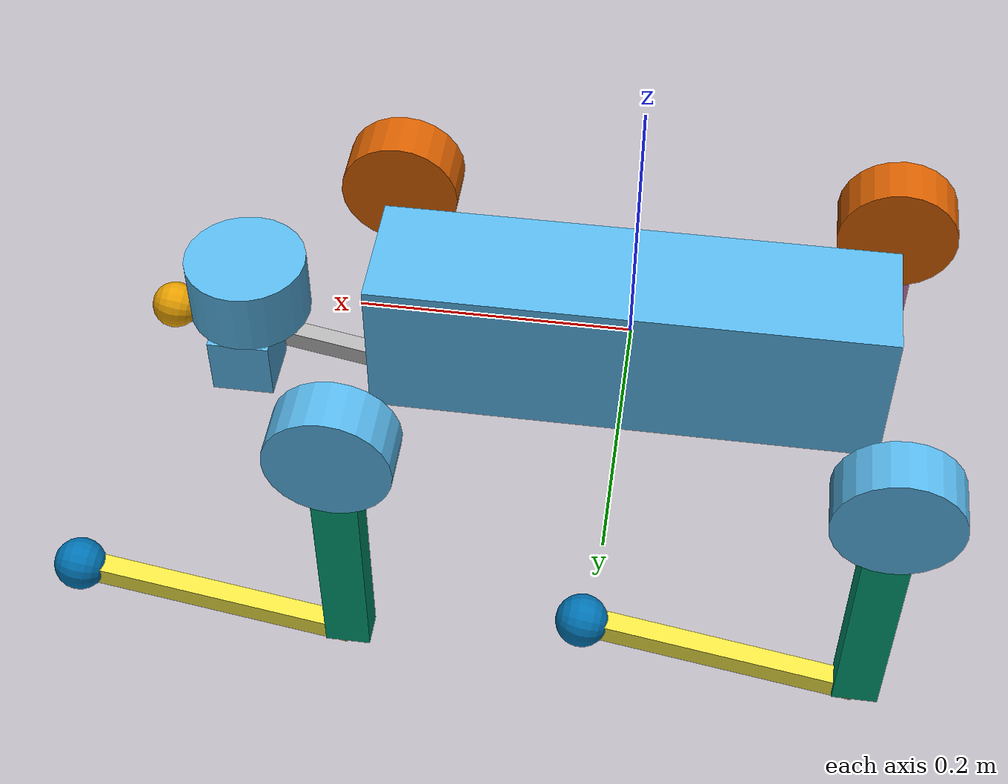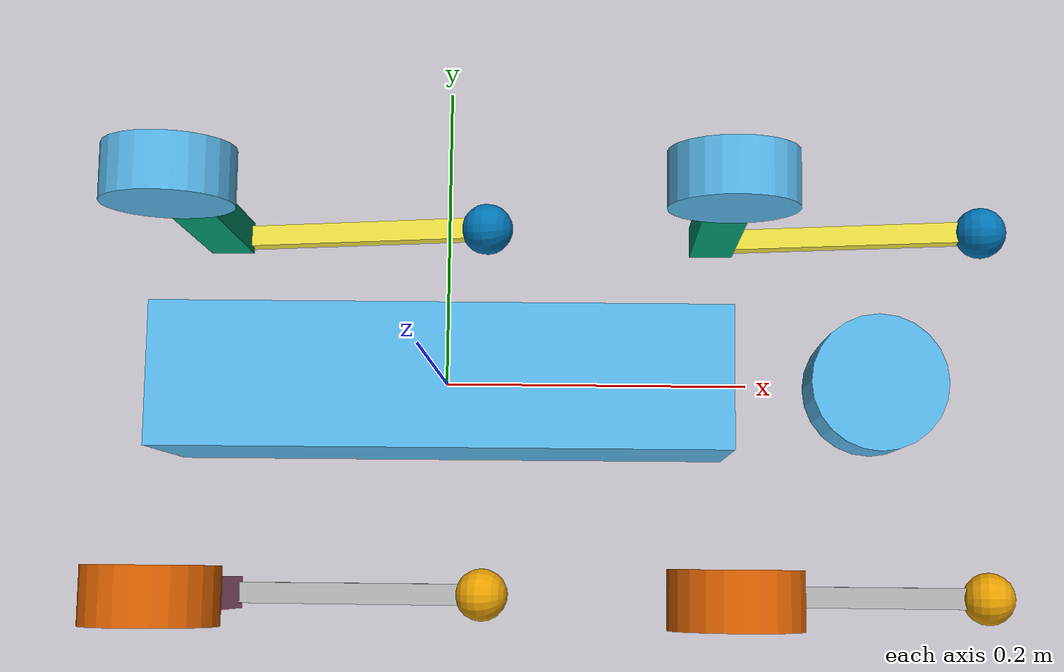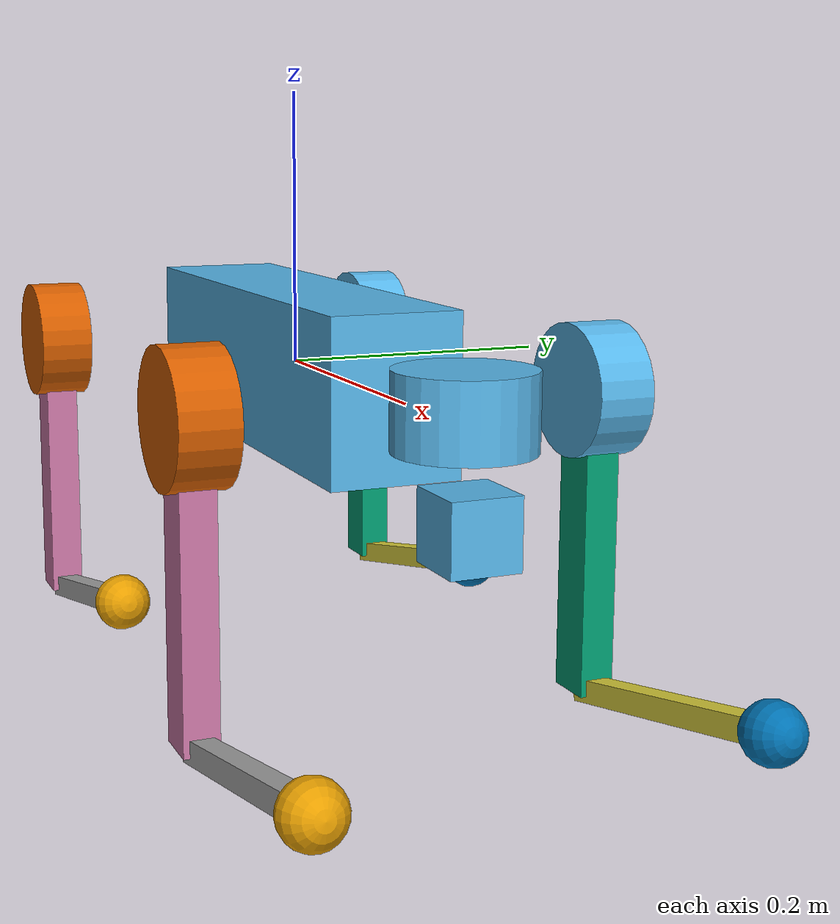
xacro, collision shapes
<?xml version="1.0"?>

<robot name="go2" xmlns:xacro="http://www.ros.org/wiki/xacro">

  <xacro:arg name="DEBUG" default="false"/>
  <xacro:arg name="GAZEBO" default="false"/>
  <xacro:arg name="CLASSIC" default="false"/>

  <xacro:include filename="$(find go2_description)/xacro/const.xacro"/>
  <xacro:include filename="$(find go2_description)/xacro/materials.xacro"/>
  <xacro:include filename="$(find go2_description)/xacro/leg.xacro"/>

  <xacro:if value="$(arg GAZEBO)">
    <xacro:if value="$(arg CLASSIC)">
      <xacro:include filename="$(find go2_description)/xacro/gazebo_classic.xacro"/>
    </xacro:if>
    <xacro:unless value="$(arg CLASSIC)">
      <xacro:include filename="$(find go2_description)/xacro/gazebo.xacro"/>
    </xacro:unless>
  </xacro:if>
  <xacro:unless value="$(arg GAZEBO)">
    <xacro:include filename="$(find go2_description)/xacro/ros2_control.xacro"/>
  </xacro:unless>

  <!-- Rotor related joint and link is only for demonstrate location. -->
  <!-- Actually, the rotor will rotate and the joint is not fixed. Reduction ratio should be considered. -->

  <!-- Debug mode will hung up the robot, use "true" or "false" to switch it. -->
  <xacro:if value="$(arg DEBUG)">
    <link name="world"/>
    <joint name="base_static_joint" type="fixed">
      <origin rpy="0 0 0" xyz="0 0 0"/>
      <parent link="world"/>
      <child link="base"/>
    </joint>
  </xacro:if>

  <link name="base">
    <visual>
      <origin rpy="0 0 0" xyz="0 0 0"/>
      <geometry>
        <box size="0.001 0.001 0.001"/>
      </geometry>
    </visual>
  </link>

  <joint name="floating_base" type="fixed">
    <origin rpy="0 0 0" xyz="0 0 0"/>
    <parent link="base"/>
    <child link="trunk"/>
  </joint>

  <link name="trunk">
    <visual>
      <origin rpy="0 0 0" xyz="0 0 0"/>
      <geometry>
        <mesh filename="file://$(find go2_description)/meshes/trunk.dae" scale="1 1 1"/>
      </geometry>
    </visual>
    <collision>
      <origin rpy="0 0 0" xyz="0 0 0"/>
      <geometry>
        <box size="${trunk_length} ${trunk_width} ${trunk_height}"/>
      </geometry>
    </collision>
    <collision>
      <origin rpy="0 0 0" xyz="0 0 0"/>
      <geometry>
        <box size="0.1881 0.04675 0.057"/>
      </geometry>
    </collision>
    <collision>
      <origin rpy="0 0 0" xyz="0.285 0 0.01"/>
      <geometry>
        <cylinder length="0.05" radius="0.045"/>
      </geometry>
    </collision>
    <collision>
      <origin rpy="0 0 0" xyz="0.293 0 -0.06"/>
      <geometry>
        <box size="0.047 0.047 0.047"/>
      </geometry>
    </collision>
    <inertial>
      <origin rpy="0 0 0" xyz="${trunk_com_x} ${trunk_com_y} ${trunk_com_z}"/>
      <mass value="${trunk_mass}"/>
      <inertia
          ixx="${trunk_ixx}" ixy="${trunk_ixy}" ixz="${trunk_ixz}"
          iyy="${trunk_iyy}" iyz="${trunk_iyz}"
          izz="${trunk_izz}"/>
    </inertial>
  </link>

  <joint name="imu_joint" type="fixed">
    <parent link="trunk"/>
    <child link="imu_link"/>
    <origin rpy="0 0 0" xyz="0 0 0"/>
  </joint>

  <link name="imu_link">
    <inertial>
      <mass value="0.001"/>
      <origin rpy="0 0 0" xyz="0 0 0"/>
      <inertia ixx="0.0001" ixy="0" ixz="0" iyy="0.0001" iyz="0" izz="0.0001"/>
    </inertial>
    <visual>
      <origin rpy="0 0 0" xyz="0 0 0"/>
      <geometry>
        <box size="0.001 0.001 0.001"/>
      </geometry>
    </visual>
    <collision>
      <origin rpy="0 0 0" xyz="0 0 0"/>
      <geometry>
        <box size=".001 .001 .001"/>
      </geometry>
    </collision>
  </link>

  <joint name="camera_joint_front" type="fixed">
    <parent link="trunk"/>
    <child link="front_camera"/>
    <origin rpy="0 0 0" xyz="0.32715 0 0.04297"/>
  </joint>

  <link name="front_camera">
  </link>

  <joint name="lidar_joint" type="fixed">
    <origin
        xyz="0.28945 0 -0.046825" rpy="0 2.8782 0"/>
    <parent link="trunk"/>
    <child link="lidar"/>
    <axis xyz="0 0 0"/>
  </joint>

  <link name="lidar">
  </link>

  <xacro:leg name="FR" mirror="-1" mirror_dae="False" front_hind="1" front_hind_dae="True"/>
  <xacro:leg name="FL" mirror="1" mirror_dae="True" front_hind="1" front_hind_dae="True"/>
  <xacro:leg name="RR" mirror="-1" mirror_dae="False" front_hind="-1" front_hind_dae="False"/>
  <xacro:leg name="RL" mirror="1" mirror_dae="True" front_hind="-1" front_hind_dae="False"/>
</robot>

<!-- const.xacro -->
<robot xmlns:xacro="http://www.ros.org/wiki/xacro">

	<!-- Constants for robot dimensions -->
	<xacro:property name="PI" value="3.1415926535897931"/>
	<xacro:property name="stick_mass" value="0.00001"/>

	<!-- simplified collision value -->
	<xacro:property name="trunk_width" value="0.0935"/>
	<xacro:property name="trunk_length" value="0.3762"/>
	<xacro:property name="trunk_height" value="0.114"/>
	<xacro:property name="hip_radius" value="0.046"/>
	<xacro:property name="hip_length" value="0.04"/>
	<xacro:property name="thigh_shoulder_radius" value="0.041"/>
	<xacro:property name="thigh_shoulder_length" value="0.032"/>
	<xacro:property name="thigh_width" value="0.0245"/>
	<xacro:property name="thigh_height" value="0.034"/>
	<xacro:property name="calf_width" value="0.016"/>
	<xacro:property name="calf_height" value="0.016"/>
	<xacro:property name="foot_radius" value="0.02"/>
	<xacro:property name="stick_radius" value="0.01"/>
	<xacro:property name="stick_length" value="0.2"/>

	<!-- kinematic value -->
	<xacro:property name="thigh_offset" value="0.0955"/>
	<xacro:property name="thigh_length" value="0.213"/>
	<xacro:property name="calf_length" value="0.213"/>

	<!-- leg offset from trunk center value -->
	<xacro:property name="leg_offset_x" value="0.1934"/>
	<xacro:property name="leg_offset_y" value="0.0465"/>
	<xacro:property name="hip_offset" value="0.0955"/>

	<!-- offset of link locations (left front) -->
	<xacro:property name="hip_offset_x" value="0.1934"/>
	<xacro:property name="hip_offset_y" value="0.0465"/>
	<xacro:property name="hip_offset_z" value="0.0"/>

	<xacro:property name="thigh_offset_x" value="0"/>
	<xacro:property name="thigh_offset_y" value="0.0955"/>
	<xacro:property name="thigh_offset_z" value="0.0"/>

	<xacro:property name="calf_offset_x" value="0.0"/>
	<xacro:property name="calf_offset_y" value="0.0"/>
	<xacro:property name="calf_offset_z" value="-0.213"/>

	<!-- joint limits -->
	<xacro:property name="damping" value="0.1"/>
	<xacro:property name="friction" value="0.2"/>
	<xacro:property name="hip_position_max" value="1.0472"/>
	<xacro:property name="hip_position_min" value="-1.0472"/>
	<xacro:property name="hip_velocity_max" value="30.1"/>
	<xacro:property name="hip_torque_max" value="23.7"/>
	<xacro:property name="thigh_position_max" value="3.4907"/>
	<xacro:property name="thigh_position_min" value="-1.5708"/>
	<xacro:property name="thigh_velocity_max" value="30.1"/>
	<xacro:property name="thigh_torque_max" value="23.7"/>
	<xacro:property name="calf_position_max" value="-0.83776"/>
	<xacro:property name="calf_position_min" value="-2.7227"/>
	<xacro:property name="calf_velocity_max" value="20.06"/>
	<xacro:property name="calf_torque_max" value="35.55"/>

	<!-- dynamics inertial value -->
	<!-- trunk -->
	<xacro:property name="trunk_mass" value="6.921"/>
	<xacro:property name="trunk_com_x" value="0.021112"/>
	<xacro:property name="trunk_com_y" value="0.00"/>
	<xacro:property name="trunk_com_z" value="-0.005366"/>
	<xacro:property name="trunk_ixx" value="0.02448"/>
	<xacro:property name="trunk_ixy" value="0.00012166"/>
	<xacro:property name="trunk_ixz" value="0.0014849"/>
	<xacro:property name="trunk_iyy" value="0.098077"/>
	<xacro:property name="trunk_iyz" value="-3.12E-05"/>
	<xacro:property name="trunk_izz" value="0.107"/>

	<!-- hip (left front) -->
	<xacro:property name="hip_mass" value="0.678"/>
	<xacro:property name="hip_com_x" value="-0.0054"/>
	<xacro:property name="hip_com_y" value="0.00194"/>
	<xacro:property name="hip_com_z" value="-0.000105"/>
	<xacro:property name="hip_ixx" value="0.00048"/>
	<xacro:property name="hip_ixy" value="-3.01E-06"/>
	<xacro:property name="hip_ixz" value="1.11E-06"/>
	<xacro:property name="hip_iyy" value="0.000884"/>
	<xacro:property name="hip_iyz" value="-1.42E-06"/>
	<xacro:property name="hip_izz" value="0.000596"/>

	<!-- thigh -->
	<xacro:property name="thigh_mass" value="1.152"/>
	<xacro:property name="thigh_com_x" value="-0.00374"/>
	<xacro:property name="thigh_com_y" value="-0.0223"/>
	<xacro:property name="thigh_com_z" value="-0.0327"/>
	<xacro:property name="thigh_ixx" value="0.00584"/>
	<xacro:property name="thigh_ixy" value="8.72E-05"/>
	<xacro:property name="thigh_ixz" value="-0.000289"/>
	<xacro:property name="thigh_iyy" value="0.0058"/>
	<xacro:property name="thigh_iyz" value="0.000808"/>
	<xacro:property name="thigh_izz" value="0.00103"/>

	<!-- calf -->
	<xacro:property name="calf_mass" value="0.154"/>
	<xacro:property name="calf_com_x" value="0.00548"/>
	<xacro:property name="calf_com_y" value="-0.000975"/>
	<xacro:property name="calf_com_z" value="-0.115"/>
	<xacro:property name="calf_ixx" value="0.00108"/>
	<xacro:property name="calf_ixy" value="3.4E-07"/>
	<xacro:property name="calf_ixz" value="1.72E-05"/>
	<xacro:property name="calf_iyy" value="0.0011"/>
	<xacro:property name="calf_iyz" value="8.28E-06"/>
	<xacro:property name="calf_izz" value="3.29E-05"/>

	<!-- foot -->
	<xacro:property name="foot_mass" value="0.06"/>

</robot>

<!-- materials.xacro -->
<robot>

	<material name="black">
		<color rgba="0.0 0.0 0.0 1.0"/>
	</material>

	<material name="blue">
		<color rgba="0.0 0.0 0.8 1.0"/>
	</material>

	<material name="green">
		<color rgba="0.0 0.8 0.0 1.0"/>
	</material>

	<material name="grey">
		<color rgba="0.2 0.2 0.2 0.0"/>
	</material>

	<material name="silver">
		<color rgba="${233/255} ${233/255} ${216/255} 1.0"/>
	</material>

	<material name="orange">
		<color rgba="${255/255} ${108/255} ${10/255} 1.0"/>
	</material>

	<material name="brown">
		<color rgba="${222/255} ${207/255} ${195/255} 1.0"/>
	</material>

	<material name="red">
		<color rgba="0.8 0.0 0.0 1.0"/>
	</material>

	<material name="white">
		<color rgba="1.0 1.0 1.0 1.0"/>
	</material>

</robot>

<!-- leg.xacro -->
<robot xmlns:xacro="http://www.ros.org/wiki/xacro">

  <xacro:include filename="$(find go2_description)/xacro/transmission.xacro"/>

  <xacro:macro name="leg" params="name mirror mirror_dae front_hind front_hind_dae">

    <joint name="${name}_hip_joint" type="revolute">
      <xacro:if value="${(mirror_dae == False) and (front_hind_dae == True)}">
        <origin rpy="0 0 0" xyz="${leg_offset_x} ${-leg_offset_y} 0"/>
      </xacro:if>
      <xacro:if value="${(mirror_dae == True) and (front_hind_dae == True)}">
        <origin rpy="0 0 0" xyz="${leg_offset_x} ${leg_offset_y} 0"/>
      </xacro:if>
      <xacro:if value="${(mirror_dae == False) and (front_hind_dae == False)}">
        <origin rpy="0 0 0" xyz="${-leg_offset_x} ${-leg_offset_y} 0"/>
      </xacro:if>
      <xacro:if value="${(mirror_dae == True) and (front_hind_dae == False)}">
        <origin rpy="0 0 0" xyz="${-leg_offset_x} ${leg_offset_y} 0"/>
      </xacro:if>
      <parent link="trunk"/>
      <child link="${name}_hip"/>
      <axis xyz="1 0 0"/>
      <dynamics damping="${damping}" friction="${friction}"/>
      <xacro:if value="${(mirror_dae == True)}">
        <limit effort="${hip_torque_max}" velocity="${hip_velocity_max}" lower="${hip_position_min}"
               upper="${hip_position_max}"/>
      </xacro:if>
      <xacro:if value="${(mirror_dae == False)}">
        <limit effort="${hip_torque_max}" velocity="${hip_velocity_max}" lower="${-hip_position_max}"
               upper="${-hip_position_min}"/>
      </xacro:if>
    </joint>

    <link name="${name}_hip">
      <visual>
        <xacro:if value="${(mirror_dae == True) and (front_hind_dae == True)}">
          <origin rpy="0 0 0" xyz="0 0 0"/>
        </xacro:if>
        <xacro:if value="${(mirror_dae == False) and (front_hind_dae == True)}">
          <origin rpy="${PI} 0 0" xyz="0 0 0"/>
        </xacro:if>
        <xacro:if value="${(mirror_dae == True) and (front_hind_dae == False)}">
          <origin rpy="0 ${PI} 0" xyz="0 0 0"/>
        </xacro:if>
        <xacro:if value="${(mirror_dae == False) and (front_hind_dae == False)}">
          <origin rpy="${PI} ${PI} 0" xyz="0 0 0"/>
        </xacro:if>
        <geometry>
          <mesh filename="file://$(find go2_description)/meshes/hip.dae" scale="1 1 1"/>
        </geometry>
      </visual>
      <collision>
        <origin rpy="${PI/2.0} 0 0" xyz="0 ${hip_offset*mirror} 0"/>
        <geometry>
          <cylinder length="${hip_length}" radius="${hip_radius}"/>
        </geometry>
      </collision>
      <inertial>
        <origin rpy="0 0 0" xyz="${hip_com_x*front_hind} ${hip_com_y*mirror} ${hip_com_z}"/>
        <mass value="${hip_mass}"/>
        <inertia
            ixx="${hip_ixx}" ixy="${hip_ixy*mirror*front_hind}" ixz="${hip_ixz*front_hind}"
            iyy="${hip_iyy}" iyz="${hip_iyz*mirror}"
            izz="${hip_izz}"/>
      </inertial>
    </link>

    <joint name="${name}_thigh_joint" type="revolute">
      <origin rpy="0 0 0" xyz="0 ${thigh_offset*mirror} 0"/>
      <parent link="${name}_hip"/>
      <child link="${name}_thigh"/>
      <axis xyz="0 1 0"/>
      <dynamics damping="${damping}" friction="${friction}"/>
      <limit effort="${thigh_torque_max}" velocity="${thigh_velocity_max}" lower="${thigh_position_min}"
             upper="${thigh_position_max}"/>
    </joint>

    <link name="${name}_thigh">
      <visual>
        <origin rpy="0 0 0" xyz="0 0 0"/>
        <geometry>
          <xacro:if value="${mirror_dae == True}">
            <mesh filename="file://$(find go2_description)/meshes/thigh.dae" scale="1 1 1"/>
          </xacro:if>
          <xacro:if value="${mirror_dae == False}">
            <mesh filename="file://$(find go2_description)/meshes/thigh_mirror.dae" scale="1 1 1"/>
          </xacro:if>
        </geometry>
      </visual>
      <collision>
        <origin rpy="0 ${PI/2.0} 0" xyz="0 0 ${-thigh_length/2.0}"/>
        <geometry>
          <box size="${thigh_length} ${thigh_width} ${thigh_height}"/>
        </geometry>
      </collision>
      <inertial>
        <origin rpy="0 0 0" xyz="${thigh_com_x} ${thigh_com_y*mirror} ${thigh_com_z}"/>
        <mass value="${thigh_mass}"/>
        <inertia
            ixx="${thigh_ixx}" ixy="${thigh_ixy*mirror}" ixz="${thigh_ixz}"
            iyy="${thigh_iyy}" iyz="${thigh_iyz*mirror}"
            izz="${thigh_izz}"/>
      </inertial>
    </link>

    <joint name="${name}_calf_joint" type="revolute">
      <origin rpy="0 0 0" xyz="0 0 ${-thigh_length}"/>
      <parent link="${name}_thigh"/>
      <child link="${name}_calf"/>
      <axis xyz="0 1 0"/>
      <dynamics damping="${damping}" friction="${friction}"/>
      <limit effort="${calf_torque_max}" velocity="${calf_velocity_max}" lower="${calf_position_min}"
             upper="${calf_position_max}"/>
    </joint>

    <link name="${name}_calf">
      <visual>
        <origin rpy="0 0 0" xyz="0 0 0"/>
        <geometry>
          <mesh filename="file://$(find go2_description)/meshes/calf.dae" scale="1 1 1"/>
        </geometry>
      </visual>
      <collision>
        <origin rpy="0 ${PI/2.0} 0" xyz="0 0 ${-calf_length/2.0}"/>
        <geometry>
          <box size="${calf_length} ${calf_width} ${calf_height}"/>
        </geometry>
      </collision>
      <inertial>
        <origin rpy="0 0 0" xyz="${calf_com_x} ${calf_com_y} ${calf_com_z}"/>
        <mass value="${calf_mass}"/>
        <inertia
            ixx="${calf_ixx}" ixy="${calf_ixy}" ixz="${calf_ixz}"
            iyy="${calf_iyy}" iyz="${calf_iyz}"
            izz="${calf_izz}"/>
      </inertial>
    </link>

    <joint name="${name}_foot_fixed" type="fixed">
      <origin rpy="0 0 0" xyz="0 0 ${-(calf_length)}"/>
      <parent link="${name}_calf"/>
      <child link="${name}_foot"/>
    </joint>

    <link name="${name}_foot">
      <visual>
        <origin rpy="0 0 0" xyz="0 0 0"/>
        <geometry>
          <sphere radius="${foot_radius-0.01}"/>
        </geometry>
      </visual>
      <collision>
        <origin rpy="0 0 0" xyz="0 0 0"/>
        <geometry>
          <sphere radius="${foot_radius}"/>
        </geometry>
      </collision>
      <inertial>
        <mass value="${foot_mass}"/>
        <inertia
            ixx="${(2*foot_mass)/5.0*(foot_radius*foot_radius)}" ixy="0.0" ixz="0.0"
            iyy="${(2*foot_mass)/5.0*(foot_radius*foot_radius)}" iyz="0.0"
            izz="${(2*foot_mass)/5.0*(foot_radius*foot_radius)}"/>
      </inertial>
    </link>

    <gazebo reference="${name}_hip">
      <mu1>0.2</mu1>
      <mu2>0.2</mu2>
    </gazebo>

    <gazebo reference="${name}_thigh">
      <mu1>0.2</mu1>
      <mu2>0.2</mu2>
      <self_collide>0</self_collide>
      <kp value="1000000.0"/>
      <kd value="100.0"/>
    </gazebo>

    <gazebo reference="${name}_calf">
      <mu1>0.6</mu1>
      <mu2>0.6</mu2>
      <self_collide>1</self_collide>
    </gazebo>

    <gazebo reference="${name}_foot">
      <mu1>0.6</mu1>
      <mu2>0.6</mu2>
      <self_collide>1</self_collide>
      <kp value="1000000.0"/>
      <kd value="100.0"/>
    </gazebo>

    <xacro:leg_transmission name="${name}"/>
  </xacro:macro>
</robot>
